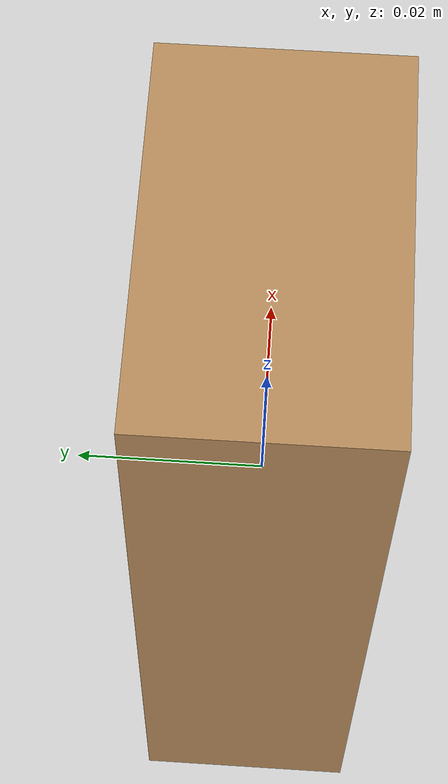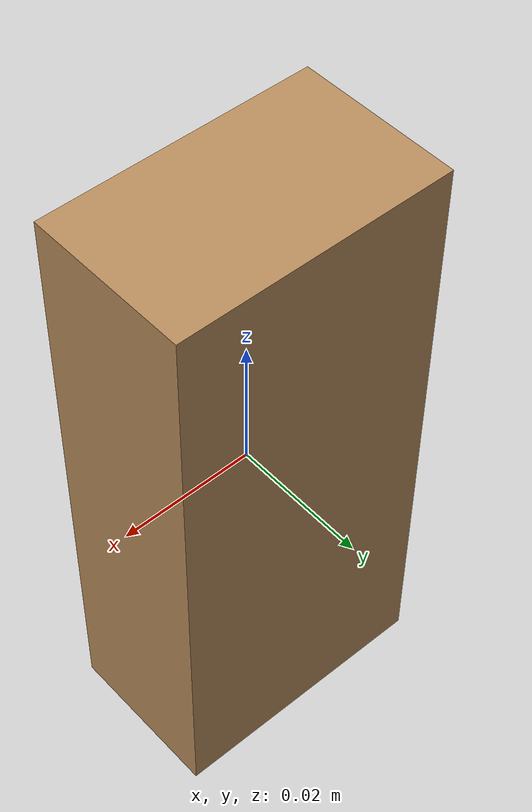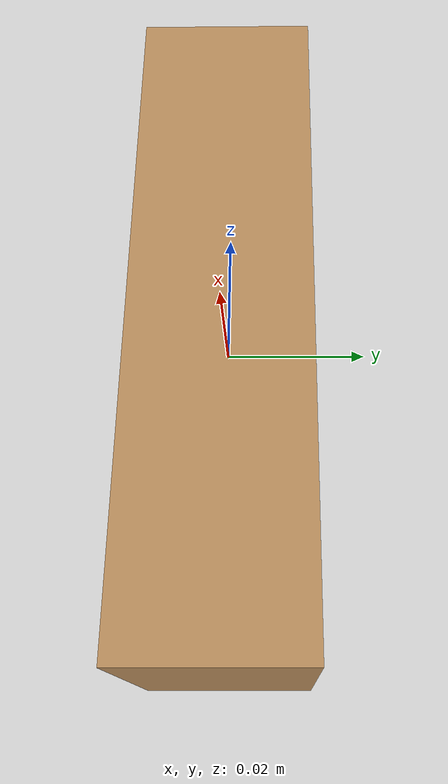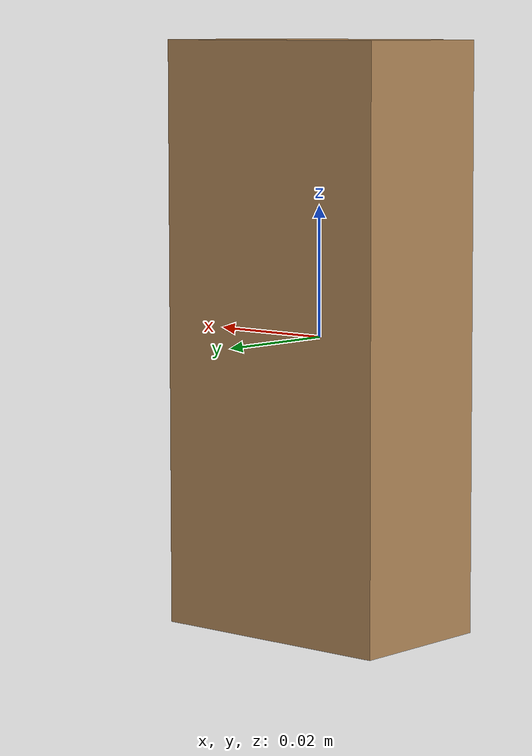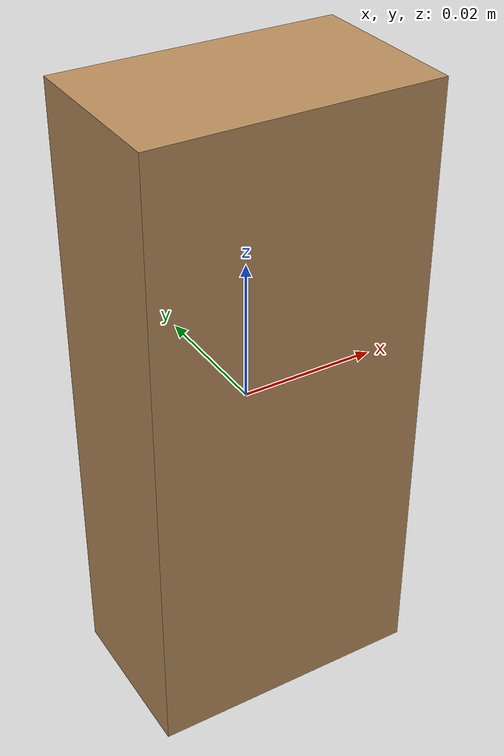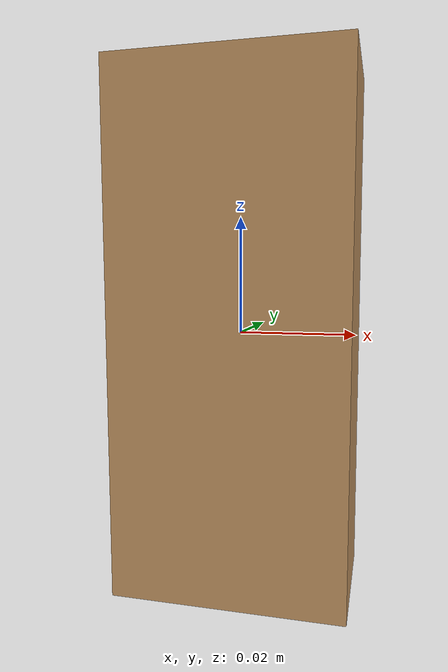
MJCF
<mujoco model="graspable_carton">
  <default>
    <geom condim="4" friction="1.2 0.005 0.0001" solimp="0.9 0.95 0.001" solref="0.005 1"/>
  </default>

  <asset>
    <material name="graspable_carton" rgba="0.72 0.55 0.36 1"/>
  </asset>

  <worldbody>
    <!-- 0.04 x 0.024 x 0.09 m, 0.2 kg. GRASP DIMENSION IS Y (24 mm). Mass sits on the geom so
         `spawn_model`'s `mass:` override has a single value to rescale. -->
    <body name="graspable_carton">
      <geom name="graspable_carton" type="box" size="0.02 0.012 0.045" mass="0.2"
            material="graspable_carton"/>
    </body>
  </worldbody>
</mujoco>
